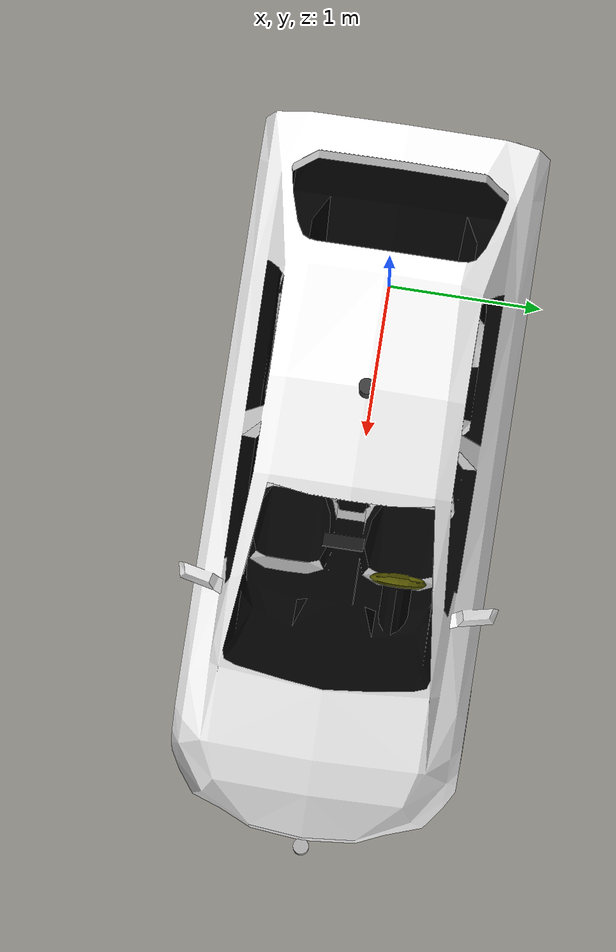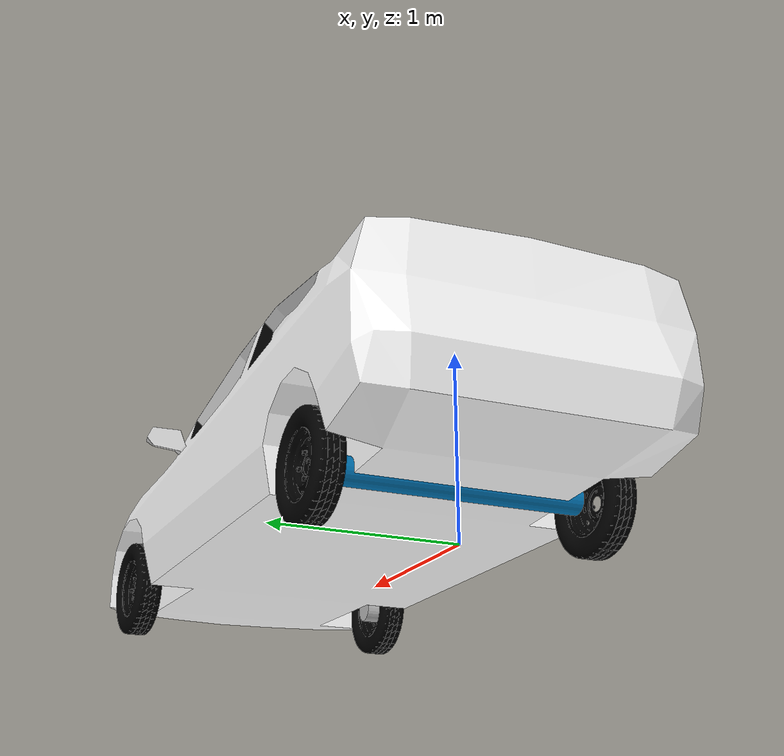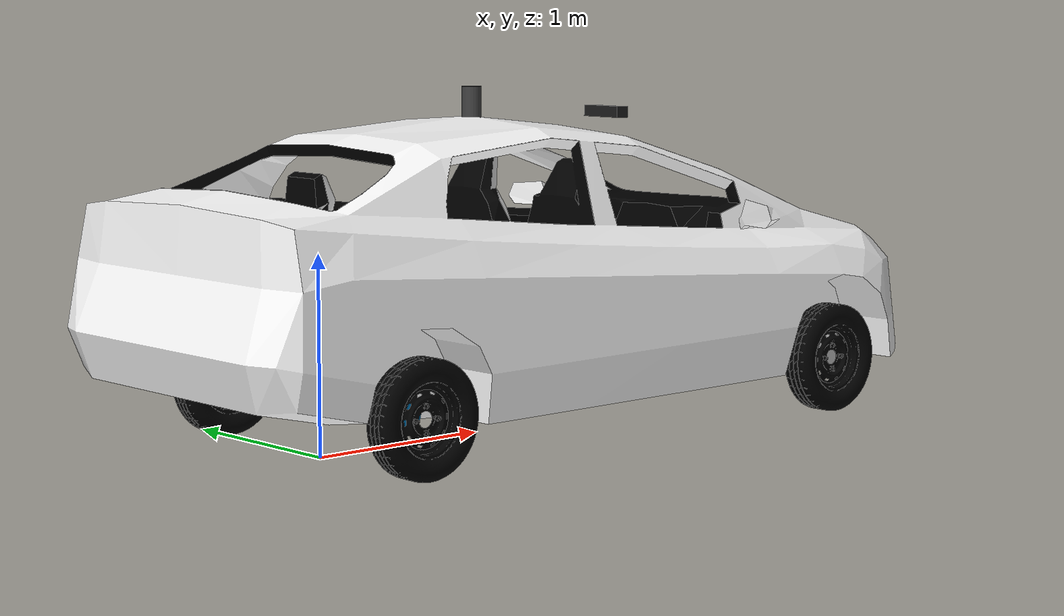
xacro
<?xml version="1.0"?>
<robot name="prius" xmlns:xacro="http://wiki.ros.org/xacro">

    <xacro:include filename="$(find easynav_playground_ackermann_description)/urdf/prius_base/prius_base.urdf.xacro"/>
    <xacro:include filename="$(find easynav_playground_ackermann_description)/urdf/steering_wheel/steering_wheel.urdf.xacro"/>
    <xacro:include filename="$(find easynav_playground_ackermann_description)/urdf/rear_axle/rear_axle.urdf.xacro"/>
    <xacro:include filename="$(find easynav_playground_ackermann_description)/urdf/front_axle/front_axle.urdf.xacro"/>
    <xacro:include filename="$(find easynav_playground_ackermann_description)/urdf/sensors.urdf.xacro"/>

    <xacro:property name="PI" value="3.1415926535897931"/>

    <xacro:arg name="robot_id" default="prius"/>
    <xacro:arg name="prefix" default=""/>
    <xacro:arg name="robot_ns" default=""/>

    <!-- Parts -->
    <xacro:prius_base prefix="$(arg prefix)"/>

    <xacro:steering_wheel prefix="$(arg prefix)" parent="$(arg prefix)base_link">
      <origin xyz="0.36 0.36 0.75" rpy="-1.302101 0 ${PI/2}"/>
    </xacro:steering_wheel>

    <xacro:rear_axle prefix="$(arg prefix)" parent="$(arg prefix)base_link">
      <origin xyz="-1.68 0 0" rpy="0 0 0"/>
    </xacro:rear_axle>

    <xacro:front_axle prefix="$(arg prefix)" subprefix="right" parent="$(arg prefix)base_link">
      <origin xyz="1.12 -0.786 0" rpy="0 0 0"/>
    </xacro:front_axle>

    <xacro:front_axle prefix="$(arg prefix)" subprefix="left" parent="$(arg prefix)base_link">
      <origin xyz="1.12 0.786 0" rpy="0 0 ${PI}"/>
    </xacro:front_axle>

    <!-- Sensors -->

    <!-- Forward camera on the front of the roof, over the windshield, as autonomous cars carry it -->
    <xacro:sensor_rgbd_camera frame_prefix="$(arg prefix)front_camera" parent="$(arg prefix)base_link">
      <origin xyz="0.25 0.0 1.32" rpy="0 0.05 0"/>
    </xacro:sensor_rgbd_camera>

    <xacro:sensor_lidar_3d node_namespace="$(arg robot_ns)" frame_prefix="$(arg prefix)top_laser" parent="$(arg prefix)base_link" simulation="true" gpu="true">
      <origin xyz="-0.70 0.0 1.4" rpy="0 0 0"/>
    </xacro:sensor_lidar_3d>

    <xacro:sensor_lidar_2d frame_prefix="$(arg prefix)front_laser" parent="$(arg prefix)base_link">
      <origin xyz="2.05 0.0 0.2" rpy="0 0 0"/>
    </xacro:sensor_lidar_2d>

    <xacro:sensor_gps  node_namespace="$(arg robot_ns)" frame_prefix="$(arg prefix)gps_" parent="$(arg prefix)base_link" simulation="true" update_rate="10.0">
      <origin xyz="-0.10 0 1.3" rpy="0 0 0"/>
    </xacro:sensor_gps>

    <xacro:sensor_imu ns="$(arg robot_ns)" prefix="$(arg prefix)imu" parent="$(arg prefix)base_link">
      <origin xyz="0.0 0.0 0.0" rpy="0 0 0"/>
    </xacro:sensor_imu>

    <!-- Gazebo ROS control plugins -->
    <xacro:include filename="$(find easynav_playground_ackermann_description)/urdf/ros2_control.urdf.xacro"/>
    <xacro:ros2_control/>

</robot>

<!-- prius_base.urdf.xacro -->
<robot name="prius_base" xmlns:xacro="http://wiki.ros.org/xacro">

  <xacro:macro name="prius_base" params="prefix">

	  <!-- Robot mechanical and motor parameters -->
	  <xacro:property name="PI" value="3.1415926535897931"/>
	  <xacro:property name="wheel_radius" value="0.3"/>

	  <!-- BASE FOOTPRINT -->
		<link name="${prefix}base_footprint">
		  <visual>
			  <origin xyz="0 0 0" rpy="0 0 0" />
			  <geometry>
				 <box size="0.001 0.001 0.001" />
			  </geometry>
		  </visual>
		</link>

		<joint name="${prefix}base_footprint_joint" type="fixed">
		  <!-- base_footprint under the rear axle: the reference point of the Ackermann kinematics and odometry -->
		  <origin xyz="1.68 0 ${wheel_radius}" rpy="0 0 0" />
		  <parent link="${prefix}base_footprint"/>
		  <child link="${prefix}base_link" />
		</joint>

	  <!-- BASE_LINK -->
        <link name="${prefix}base_link">
			<inertial>
		  		<mass value="1326.0" />
		  		<origin xyz="0 -0.266 0.48" rpy="0 0 ${PI/2}"/>
		  		<inertia  ixx="2581.13354740" ixy="0.0"  ixz="0.0"  iyy="591.30846112"  iyz="0.0"  izz="2681.95008628" />
			</inertial>
			<visual>
				<origin xyz="0 0 0" rpy="0 0 ${PI/2}" />
				<geometry>
					<mesh filename="file://$(find easynav_playground_ackermann_description)/meshes/prius_base.dae"/>
				</geometry>
			</visual>
			<collision>
				<origin xyz="-0.3 0 0.6" rpy="0 0 0" />
				<geometry>
					<box size="4.6182 2.0123 1.3866"/>
				</geometry>
			</collision>
        </link>

		<joint name="${prefix}base_interior_joint" type="fixed">
		  <origin xyz="0 0 ${wheel_radius}" rpy="0 0 0" />
		  <parent link="${prefix}base_link"/>
		  <child link="${prefix}base_interior_link" />
		</joint>

	  <!-- BASE_INTERIOR -->
        <link name="${prefix}base_interior_link">
			<inertial>
		  		<mass value="1.0" />
		  		<origin xyz="0 0 0" rpy="0 0 0"/>
		  		<inertia  ixx="0.13354740" ixy="0.0"  ixz="0.0"  iyy="0.30846112"  iyz="0.0"  izz="0.95008628" />
			</inertial>
			<visual>
				<origin xyz="-0.695 0 0.275" rpy="0 0 0" />
				<geometry>
					<mesh filename="file://$(find easynav_playground_ackermann_description)/meshes/prius_interior.dae"/>
				</geometry>
			</visual>
			<collision>
				<origin xyz="0 0 0" rpy="0 0 0" />
				<geometry>
					<box size="0.1 0.1 0.1"/>
				</geometry>
			</collision>
        </link>

  </xacro:macro>
</robot>

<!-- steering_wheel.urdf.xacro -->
<robot name="steering_wheel" xmlns:xacro="http://wiki.ros.org/xacro">
  <xacro:macro name="steering_wheel" params="prefix parent *origin">

    <joint name="${prefix}steering_wheel_joint" type="continuous">
      <parent link="${parent}"/>
      <child link="${prefix}steering_wheel_link"/>
      <xacro:insert_block name="origin" />
      <axis xyz="0 0 1" />
      <mimic joint="front_axle_left_joint" multiplier="1" offset="0"/>
    </joint>

    <link name="${prefix}steering_wheel_link">
			<inertial>
		  		<mass value="1.0" />
		  		<origin xyz="0 0 0" rpy="${PI/2} 0 0"/>
		  		<inertia  ixx="0.14583300" ixy="0.0"  ixz="0.0"  iyy="0.14583300"  iyz="0.0"  izz="0.12500000" />
			</inertial>
			<visual>
				<origin xyz="0 0 0" rpy="${PI/2} 0 0" />
				<geometry>
					<mesh filename="file://$(find easynav_playground_ackermann_description)/meshes/steering_wheel.dae"/>
				</geometry>
			</visual>
			<collision>
				<origin xyz="0 0 0" rpy="0 0 0" />
				<geometry>
					<cylinder radius="0.178172" length="0.041845"/>
				</geometry>
			</collision>
    </link>

  </xacro:macro>
</robot>

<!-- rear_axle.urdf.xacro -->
<robot name="rear_axle" xmlns:xacro="http://wiki.ros.org/xacro">

	<xacro:include filename="$(find easynav_playground_ackermann_description)/urdf/wheel/wheel.urdf.xacro"/>

  <xacro:macro name="rear_axle" params="prefix parent *origin">

    <joint name="${prefix}rear_axle_joint" type="fixed">
      <parent link="${parent}"/>
      <child link="${prefix}rear_axle_link"/>
      <xacro:insert_block name="origin" />
    </joint>

    <link name="${prefix}rear_axle_link">
		<inertial>
			<mass value="30.0" />
			<origin xyz="0 0 0" rpy="${PI/2} 0 0"/>
			<inertia  ixx="0.08437499999999999" ixy="0.0"  ixz="0.0"  iyy="4.64581"  iyz="0.0"  izz="4.64581" />
		</inertial>
		<visual>
			<origin xyz="0 0 0" rpy="${PI/2} 0 0" />
			<geometry>
				<cylinder radius="0.075" length="1.357"/>
			</geometry>
		</visual>
		<collision>
			<origin xyz="0 0 0" rpy="${PI/2} 0 0" />
			<geometry>
				<cylinder radius="0.075" length="1.357"/>
			</geometry>
		</collision>
    </link>

    <xacro:wheel prefix="$(arg prefix)rear_right_" parent="${prefix}rear_axle_link" reflect="true">
      <origin xyz="0 -0.786 0.0" rpy="${-PI/2} 0 0"/>
    </xacro:wheel>

	<xacro:wheel prefix="$(arg prefix)rear_left_" parent="${prefix}rear_axle_link" reflect="false">
      <origin xyz="0 0.786 0.0" rpy="${-PI/2} 0 0"/>
    </xacro:wheel>

  </xacro:macro>
</robot>

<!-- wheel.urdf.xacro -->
<robot name="wheel" xmlns:xacro="http://wiki.ros.org/xacro">

  <xacro:property name="M_PI" value="3.1415926535897931" />

  <xacro:macro name="cylinder_inertia" params="m r h">
    <inertia  ixx="${m*(3*r*r+h*h)/12}" ixy = "0" ixz = "0"
              iyy="${m*r*r/2}" iyz = "0"
              izz="${m*(3*r*r+h*h)/12}" />
  </xacro:macro>

  <xacro:macro name="wheel" params="prefix parent *origin reflect wheel_radius:=0.3 wheel_width:=0.16 wheel_mass:=11">

<!--WHEEL TIRE -->
    <joint name="${prefix}wheel_joint" type="continuous">
      <parent link="${parent}"/>
      <child link="${prefix}wheel_link"/>
      <xacro:insert_block name="origin" />
      <axis xyz="0 0 1" />
    </joint>

    <link name="${prefix}wheel_link">
      <visual>
          <xacro:unless value="${reflect}">
            <origin xyz="0 0 0" rpy="0 0 0" />
          </xacro:unless>
          <xacro:if value="${reflect}">
            <origin xyz="0 0 0" rpy="${M_PI} 0 0" />
          </xacro:if>
          <geometry>
							<mesh filename="file://$(find easynav_playground_ackermann_description)/meshes/wheel.dae"/>
          </geometry>
      </visual>

      <collision>
          <xacro:unless value="${reflect}">
            <origin xyz="0 0 0" rpy="0 0 0" />
          </xacro:unless>
          <xacro:if value="${reflect}">
            <origin xyz="0 0 0" rpy="${M_PI} 0 0" />
          </xacro:if>
          <geometry>
						<cylinder radius="0.3" length="0.16"/>
        </geometry>
      </collision>
      <inertial>
        <mass value="${wheel_mass}" />
        <origin xyz="0 0 0" />
        <xacro:cylinder_inertia  m="${wheel_mass}" r="${wheel_radius}" h="${wheel_width}" />
      </inertial>
    </link>

    <!-- Transmission is important to link the joints and the controller (see summit_xl_control/config/summit_xl_control.yaml)-->
    <transmission name="${prefix}wheel_joint_trans">
      <plugin>transmission_interface/SimpleTransmission</plugin>
      <actuator name="${prefix}wheel_joint_motor" role="${prefix}wheel_joint_motor"/>
      <joint name="${prefix}wheel_joint" role="${prefix}wheel_joint">
        <mechanicalReduction>1</mechanicalReduction>
      </joint>
     </transmission>
  </xacro:macro>

</robot>

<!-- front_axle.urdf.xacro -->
<robot name="front_axle" xmlns:xacro="http://wiki.ros.org/xacro">

	<xacro:include filename="$(find easynav_playground_ackermann_description)/urdf/wheel/wheel.urdf.xacro"/>

	<xacro:macro name="front_axle" params="prefix subprefix parent *origin">

		<joint name="${prefix}front_axle_${subprefix}_joint" type="continuous">
			<parent link="${parent}"/>
			<child link="${prefix}front_axle_${subprefix}_link"/>
			<xacro:insert_block name="origin" />
			<axis xyz="0 0 1" />
			<limit lower="-0.6" upper="0.6" effort="100000" velocity="100"/>
		</joint>

		<link name="${prefix}front_axle_${subprefix}_link">
			<inertial>
				<mass value="10.0" />
				<origin xyz="0 0 0" rpy="${PI/2} 0 0"/>
				<inertia  ixx="0.03437499999999999" ixy="0.0"  ixz="0.0"  iyy="1.64581"  iyz="0.0"  izz="1.64581" />
			</inertial>
			<visual>
				<origin xyz="0 0 0" rpy="${PI/2} 0 0" />
				<geometry>
					<cylinder radius="0.075" length="0.1"/>
				</geometry>
			</visual>
			<collision>
				<origin xyz="0 0 0" rpy="${PI/2} 0 0" />
				<geometry>
					<cylinder radius="0.075" length="0.1"/>
				</geometry>
			</collision>
		</link>

		<transmission name="${prefix}front_axle_${subprefix}_joint_trans">
			<plugin>transmission_interface/SimpleTransmission</plugin>
			<actuator name="${prefix}front_axle_${subprefix}_joint_motor" role="${prefix}front_axle_${subprefix}_joint_motor"/>
			<joint name="${prefix}front_axle_${subprefix}_joint" role="${prefix}front_axle_${subprefix}_joint">
				<mechanicalReduction>1</mechanicalReduction>
			</joint>
     	</transmission>

		<xacro:wheel prefix="$(arg prefix)front_${subprefix}_" parent="${prefix}front_axle_${subprefix}_link" reflect="false">
		<origin xyz="0 -0.05 0.0" rpy="${PI/2} 0 0"/>
		</xacro:wheel>

	</xacro:macro>
</robot>

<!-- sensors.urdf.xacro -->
<robot name="all_sensors" xmlns:xacro="http://wiki.ros.org/xacro">

  <!-- RGBD camera -->
  <xacro:include filename="$(find easynav_playground_ackermann_description)/urdf/sensors/camera/rgbd_camera.urdf.xacro" />

  <!-- 3D Lidars -->
  <xacro:include filename="$(find easynav_playground_ackermann_description)/urdf/sensors/lidar_3d/lidar_3d.urdf.xacro" />

  <!-- 2D Lidars -->
  <xacro:include filename="$(find easynav_playground_ackermann_description)/urdf/sensors/lidar_2d/lidar_2d.urdf.xacro" />

  <!-- IMUs -->
  <xacro:include filename="$(find easynav_playground_ackermann_description)/urdf/sensors/imu/imu.urdf.xacro" />

  <!-- GPS -->
  <xacro:include filename="$(find easynav_playground_ackermann_description)/urdf/sensors/gps/gps.urdf.xacro" />

</robot>

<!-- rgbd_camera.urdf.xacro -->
<!--
Copyright 2026 Intelligent Robotics Lab
SPDX-License-Identifier: Apache-2.0
-->
<robot name="sensor_rgbd_camera" xmlns:xacro="http://wiki.ros.org/xacro">
  <xacro:macro name="sensor_rgbd_camera"
               params="frame_prefix parent *origin horizontal_fov:=1.4 width:=1280 height:=720
                       update_rate:=15 far:=60.0">

    <joint name="${frame_prefix}_base_joint" type="fixed">
      <xacro:insert_block name="origin"/>
      <parent link="${parent}"/>
      <child link="${frame_prefix}_link"/>
    </joint>
    <link name="${frame_prefix}_link">
      <visual>
        <geometry>
          <box size="0.08 0.25 0.06"/>
        </geometry>
        <material name="camera_black">
          <color rgba="0.1 0.1 0.1 1"/>
        </material>
      </visual>
      <inertial>
        <mass value="0.3"/>
        <inertia ixx="0.0017" ixy="0" ixz="0" iyy="0.0003" iyz="0" izz="0.0017"/>
      </inertial>
    </link>

    <joint name="${frame_prefix}_optical_joint" type="fixed">
      <origin xyz="0 0 0" rpy="${-pi/2} 0 ${-pi/2}"/>
      <parent link="${frame_prefix}_link"/>
      <child link="${frame_prefix}_optical_frame"/>
    </joint>
    <link name="${frame_prefix}_optical_frame"/>

    <gazebo reference="${frame_prefix}_link">
      <sensor name="${frame_prefix}_sensor" type="rgbd_camera">
        <always_on>1</always_on>
        <update_rate>${update_rate}</update_rate>
        <visualize>true</visualize>
        <topic>${frame_prefix}</topic>
        <gz_frame_id>${frame_prefix}_link</gz_frame_id>
        <camera>
          <horizontal_fov>${horizontal_fov}</horizontal_fov>
          <image>
            <width>${width}</width>
            <height>${height}</height>
            <format>R8G8B8</format>
          </image>
          <clip>
            <near>0.1</near>
            <far>${far}</far>
          </clip>
          <optical_frame_id>${frame_prefix}_optical_frame</optical_frame_id>
        </camera>
      </sensor>
    </gazebo>
  </xacro:macro>
</robot>

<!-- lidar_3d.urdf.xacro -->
<robot name="sensor_lidar_3d" xmlns:xacro="http://wiki.ros.org/xacro">
  <xacro:macro name="solid_cuboid_inertia" params="m w h d">
    <inertia  ixx="${(m*(h*h+d*d))/12}" ixy = "0" ixz = "0"
              iyy="${(m*(w*w+d*d))/12}" iyz = "0"
              izz="${(m*(w*w+h*h))/12}"
     />
  </xacro:macro>
  <xacro:macro name="sensor_lidar_3d"
               params="frame_prefix
                       parent
                       *origin
                       simulation:=true
                       node_name:=robosense_helios
                       node_namespace:=${None}
                       topic_prefix:=~/
                       gpu:=true">

    <joint name="${frame_prefix}_base_joint" type="fixed">
      <xacro:insert_block name="origin" />
      <parent link="${parent}"/>
      <child link="${frame_prefix}_base_link"/>
    </joint>
    <link name="${frame_prefix}_base_link">
      <collision>
        <origin xyz="0 0 0" rpy="0 0 0"/>
        <geometry>
          <cylinder radius="0.05" length="0.16"/>
        </geometry>
      </collision>
      <visual>
        <origin xyz="0 0 0" rpy="0 0 0"/>
        <geometry>
          <cylinder radius="0.05" length="0.16"/>
        </geometry>
        <material name="blackgray_color">
          <color rgba="0.25 0.25 0.25 1"/>
        </material>
      </visual>
      <inertial>
        <mass value="0.840" />
        <origin xyz="0 0 0.04135" />
		<xacro:solid_cuboid_inertia m="0.840" w="0.109" h="0.109" d="0.0827" />
      </inertial>
    </link>
    <joint name="${frame_prefix}_joint" type="fixed">
      <parent link="${frame_prefix}_base_link"/>
      <child link="${frame_prefix}_link"/>
      <origin xyz="0.0 0 0.0635" rpy="0 0 0"/>
    </joint>
    <link name="${frame_prefix}_link"/>
      <gazebo reference="${frame_prefix}_link">
        <sensor name='gpu_lidar_3d' type='gpu_lidar'>
          <pose relative_to='${frame_prefix}_link'>0 0 0 0 0 0</pose>
          <topic>${frame_prefix}</topic>
          <update_rate>20</update_rate>
          <gz_frame_id>${frame_prefix}_link</gz_frame_id>
          <ray>
            <scan>
              <horizontal>
                <samples>1024</samples>
                <resolution>1</resolution>
                <min_angle>-3.141592</min_angle>
                <max_angle>3.141592</max_angle>
              </horizontal>
              <vertical>
                <samples>32</samples>
                <resolution>1</resolution>
                <min_angle>-0.37</min_angle>
                <max_angle>0.37</max_angle>
              </vertical>
            </scan>
            <range>
              <min>2.5</min>
              <max>200.0</max>
              <resolution>0.05</resolution>
            </range>
          </ray>
          <visualize>true</visualize>
        </sensor>
      </gazebo>
  </xacro:macro>
</robot>

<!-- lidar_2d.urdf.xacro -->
<robot name="sensor_lidar_2d" xmlns:xacro="http://wiki.ros.org/xacro">
  <xacro:macro name="solid_cuboid_inertia" params="m w h d">
    <inertia  ixx="${(m*(h*h+d*d))/12}" ixy = "0" ixz = "0"
              iyy="${(m*(w*w+d*d))/12}" iyz = "0"
              izz="${(m*(w*w+h*h))/12}"
     />
  </xacro:macro>
  <xacro:macro name="sensor_lidar_2d"
               params="frame_prefix
                       parent
                       *origin">

    <joint name="${frame_prefix}base_joint" type="fixed">
      <xacro:insert_block name="origin" />
      <parent link="${parent}"/>
      <child link="${frame_prefix}base_link"/>
    </joint>
    <link name="${frame_prefix}base_link">
      <visual>
        <origin xyz="0 0 0" rpy="0 0 0"/>
        <geometry>
          <cylinder radius="0.05" length="0.1"/>
        </geometry>
      </visual>
      <collision>
        <origin xyz="0 0 0" rpy="0 0 0"/>
        <geometry>
          <cylinder radius="0.05" length="0.1"/>
        </geometry>
      </collision>
      <inertial>
        <mass value="0.25" />
        <origin xyz="-0.0017 0 0.042875" rpy="0 0 0"/>
        <xacro:solid_cuboid_inertia m="0.25" w="0.061" h="0.06" d="0.08575" />
      </inertial>
    </link>
    <joint name="${frame_prefix}joint" type="fixed">
      <origin xyz="0.0 0 0.116" rpy="0 0 0"/>
      <parent link="${frame_prefix}base_link"/>
      <child link="${frame_prefix}link"/>
    </joint>
    <link name="${frame_prefix}link"/>
    <gazebo reference="${frame_prefix}link">
      <sensor name="gpu_lidar_2d" type="gpu_lidar">
        <update_rate>10</update_rate>
        <topic>${frame_prefix}</topic>
        <gz_frame_id>${frame_prefix}link</gz_frame_id>
        <lidar>
          <scan>
            <horizontal>
              <samples>720</samples>
              <!--(max_angle-min_angle)/samples * resolution -->
              <resolution>1</resolution>
              <min_angle>-1.5707</min_angle>
              <max_angle>1.5707</max_angle>
            </horizontal>
            <!-- Dirty hack for fake lidar detections with ogre 1 rendering in VM -->
          </scan>
          <range>
            <min>0.05</min>
            <max>50.0</max>
            <resolution>0.01</resolution>
          </range>
          <noise>
              <type>gaussian</type>
              <mean>0.0</mean>
              <stddev>0.01</stddev>
          </noise>
          <frame_id>${frame_prefix}link</frame_id>
        </lidar>
        <always_on>1</always_on>
        <visualize>true</visualize>
      </sensor>
    </gazebo>
  </xacro:macro>
</robot>

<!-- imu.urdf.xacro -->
<robot name="sensor_imu" xmlns:xacro="http://wiki.ros.org/xacro">

  <xacro:macro name="sensor_imu" params="prefix ns:='' topic:='imu/data' parent *origin">

	  <joint name="${prefix}_joint" type="fixed">
	      <axis xyz="1 0 0"/>
	      <xacro:insert_block name="origin"/>
	      <parent link="${parent}"/>
	      <child link="${prefix}_link"/>
	  </joint>

	  <link name="${prefix}_link">
	      <inertial>
			<origin xyz="0.0 0 0.01" rpy="0 0 0" />
			<mass value="0.005" />
			<xacro:solid_cuboid_inertia m="0.005" w="0.001" h="0.001" d="0.001" />
		  </inertial>
	      <visual>
	        <origin rpy="0 0 0" xyz="0 0 0"/>
	        <geometry>
	          <box size="0.001 0.001 0.001"/>
	        </geometry>
	      </visual>
	  </link>

    <gazebo reference="${prefix}_link">
      <sensor name="${prefix}_sensor" type="imu">
        <always_on>1</always_on>
        <update_rate>30</update_rate>
        <topic>${topic}</topic>
        <gz_frame_id>${prefix}_link</gz_frame_id>
        <!-- Absolute orientation (east-north-up), as an AHRS gives it: by default Gazebo
             reports it relative to the spawn pose -->
        <imu>
          <orientation_reference_frame>
            <localization>ENU</localization>
          </orientation_reference_frame>
        </imu>
      </sensor>
    </gazebo>

  </xacro:macro>

</robot>

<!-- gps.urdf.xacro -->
<robot name="sensor_gps" xmlns:xacro="http://wiki.ros.org/xacro">
	<xacro:macro name="sensor_gps"
               params="frame_prefix
                       parent
                       *origin
                       simulation:=false
                       node_name:=gps
                       node_namespace:=${None}
                       topic_prefix:=~/
                       update_rate:=1.0">

	  <joint name="${frame_prefix}joint" type="fixed">
	    <xacro:insert_block name="origin"/>
	    <parent link="${parent}"/>
	    <child link="${frame_prefix}base_link"/>
	  </joint>

	  <link name="${frame_prefix}base_link">
	  </link>

    <gazebo reference="${frame_prefix}base_link">
      <sensor name="${frame_prefix}sensor" type="navsat">
        <always_on>1</always_on>
        <update_rate>${update_rate}</update_rate>
        <topic>gps/fix</topic>
        <gz_frame_id>${frame_prefix}base_link</gz_frame_id>
      </sensor>
    </gazebo>

  </xacro:macro>
</robot>
